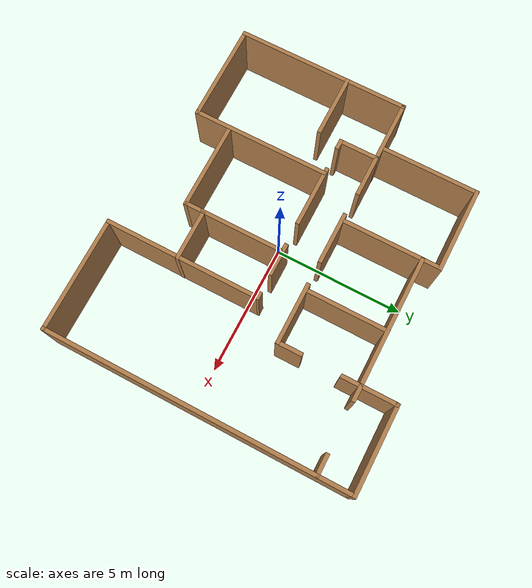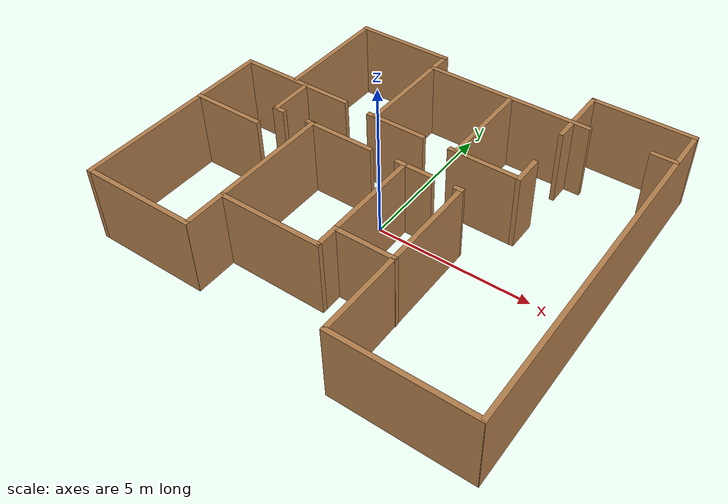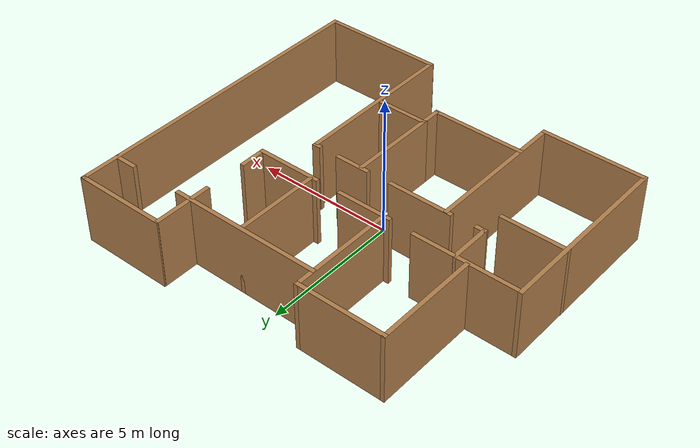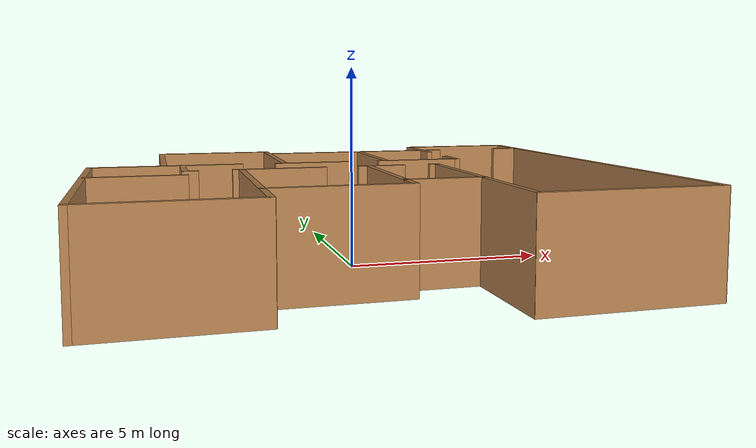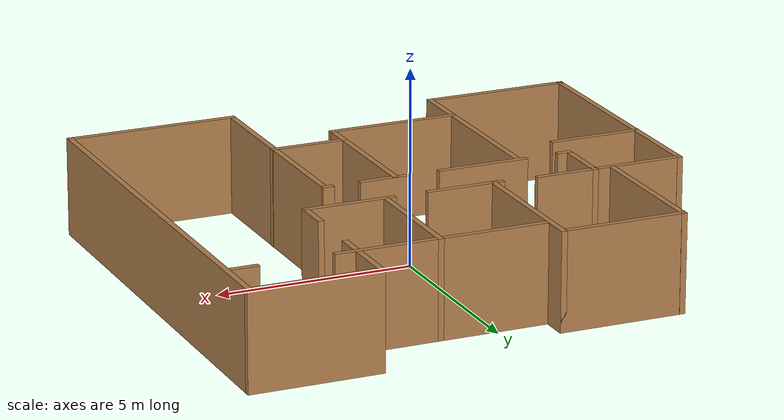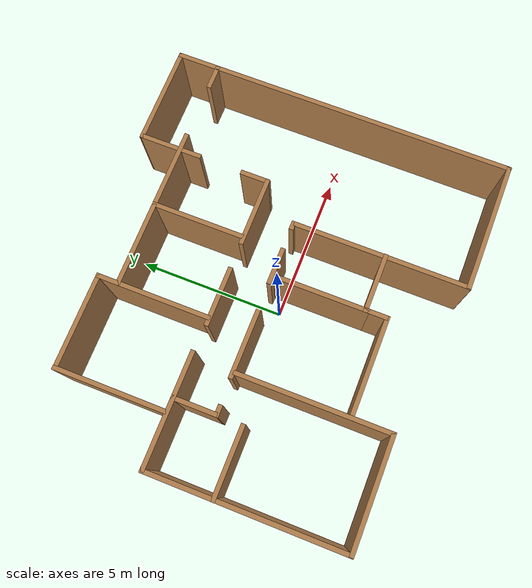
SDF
<?xml version='1.0'?>
<sdf version='1.6'>
  <model name='4room_1'>
    <pose frame=''>0.180514 0.359452 0 0 -0 0</pose>
    <link name='Wall_101'>
      <collision name='Wall_101_Collision'>
        <geometry>
          <box>
            <size>2.4 0.15 2.5</size>
          </box>
        </geometry>
        <pose frame=''>0 0 1.25 0 -0 0</pose>
      </collision>
      <visual name='Wall_101_Visual'>
        <pose frame=''>0 0 1.25 0 -0 0</pose>
        <geometry>
          <box>
            <size>2.4 0.15 2.5</size>
          </box>
        </geometry>
        <material>
          <script>
            <uri>file://media/materials/scripts/gazebo.material</uri>
            <name>Gazebo/Wood</name>
          </script>
          <ambient>1 1 1 1</ambient>
        </material>
        <meta>
          <layer>0</layer>
        </meta>
      </visual>
      <pose frame=''>-5.3703 -0.821222 0 0 -0 0</pose>
    </link>
    <link name='Wall_105'>
      <collision name='Wall_105_Collision'>
        <geometry>
          <box>
            <size>0.3 0.15 2.5</size>
          </box>
        </geometry>
        <pose frame=''>0 0 1.25 0 -0 0</pose>
      </collision>
      <visual name='Wall_105_Visual'>
        <pose frame=''>0 0 1.25 0 -0 0</pose>
        <geometry>
          <box>
            <size>0.3 0.15 2.5</size>
          </box>
        </geometry>
        <material>
          <script>
            <uri>file://media/materials/scripts/gazebo.material</uri>
            <name>Gazebo/Wood</name>
          </script>
          <ambient>1 1 1 1</ambient>
        </material>
        <meta>
          <layer>0</layer>
        </meta>
      </visual>
      <pose frame=''>2.15179 0.063742 0 0 -0 0</pose>
    </link>
    <link name='Wall_107'>
      <collision name='Wall_107_Collision'>
        <geometry>
          <box>
            <size>3.75 0.15 2.5</size>
          </box>
        </geometry>
        <pose frame=''>0 0 1.25 0 -0 0</pose>
      </collision>
      <visual name='Wall_107_Visual'>
        <pose frame=''>0 0 1.25 0 -0 0</pose>
        <geometry>
          <box>
            <size>3.75 0.15 2.5</size>
          </box>
        </geometry>
        <material>
          <script>
            <uri>file://media/materials/scripts/gazebo.material</uri>
            <name>Gazebo/Wood</name>
          </script>
          <ambient>1 1 1 1</ambient>
        </material>
        <meta>
          <layer>0</layer>
        </meta>
      </visual>
      <pose frame=''>-4.68068 3.32031 0 0 -0 -1.5708</pose>
    </link>
    <link name='Wall_109'>
      <collision name='Wall_109_Collision'>
        <geometry>
          <box>
            <size>3.25 0.15 2.5</size>
          </box>
        </geometry>
        <pose frame=''>0 0 1.25 0 -0 0</pose>
      </collision>
      <visual name='Wall_109_Visual'>
        <pose frame=''>0 0 1.25 0 -0 0</pose>
        <geometry>
          <box>
            <size>3.25 0.15 2.5</size>
          </box>
        </geometry>
        <material>
          <script>
            <uri>file://media/materials/scripts/gazebo.material</uri>
            <name>Gazebo/Wood</name>
          </script>
          <ambient>1 1 1 1</ambient>
        </material>
        <meta>
          <layer>0</layer>
        </meta>
      </visual>
      <pose frame=''>-3.1281 5.11524 0 0 -0 3.14159</pose>
    </link>
    <link name='Wall_111'>
      <collision name='Wall_111_Collision'>
        <geometry>
          <box>
            <size>3.85 0.15 2.5</size>
          </box>
        </geometry>
        <pose frame=''>0 0 1.25 0 -0 0</pose>
      </collision>
      <visual name='Wall_111_Visual'>
        <pose frame=''>0 0 1.25 0 -0 0</pose>
        <geometry>
          <box>
            <size>3.85 0.15 2.5</size>
          </box>
        </geometry>
        <material>
          <script>
            <uri>file://media/materials/scripts/gazebo.material</uri>
            <name>Gazebo/Wood</name>
          </script>
          <ambient>1 1 1 1</ambient>
        </material>
        <meta>
          <layer>0</layer>
        </meta>
      </visual>
      <pose frame=''>-1.5781 3.26524 0 0 -0 -1.5708</pose>
    </link>
    <link name='Wall_113'>
      <collision name='Wall_113_Collision'>
        <geometry>
          <box>
            <size>2 0.15 2.5</size>
          </box>
        </geometry>
        <pose frame=''>0 0 1.25 0 -0 0</pose>
      </collision>
      <visual name='Wall_113_Visual'>
        <pose frame=''>0 0 1.25 0 -0 0</pose>
        <geometry>
          <box>
            <size>2 0.15 2.5</size>
          </box>
        </geometry>
        <material>
          <script>
            <uri>file://media/materials/scripts/gazebo.material</uri>
            <name>Gazebo/Wood</name>
          </script>
          <ambient>1 1 1 1</ambient>
        </material>
        <meta>
          <layer>0</layer>
        </meta>
      </visual>
      <pose frame=''>-0.840672 1.36881 0 0 -0 0</pose>
    </link>
    <link name='Wall_115'>
      <collision name='Wall_115_Collision'>
        <geometry>
          <box>
            <size>5.5 0.15 2.5</size>
          </box>
        </geometry>
        <pose frame=''>0 0 1.25 0 -0 0</pose>
      </collision>
      <visual name='Wall_115_Visual'>
        <pose frame=''>0 0 1.25 0 -0 0</pose>
        <geometry>
          <box>
            <size>5.5 0.15 2.5</size>
          </box>
        </geometry>
        <material>
          <script>
            <uri>file://media/materials/scripts/gazebo.material</uri>
            <name>Gazebo/Wood</name>
          </script>
          <ambient>1 1 1 1</ambient>
        </material>
        <meta>
          <layer>0</layer>
        </meta>
      </visual>
      <pose frame=''>1.12225 4.44605 0 0 -0 0</pose>
    </link>
    <link name='Wall_117'>
      <collision name='Wall_117_Collision'>
        <geometry>
          <box>
            <size>3.15 0.15 2.5</size>
          </box>
        </geometry>
        <pose frame=''>0 0 1.25 0 -0 0</pose>
      </collision>
      <visual name='Wall_117_Visual'>
        <pose frame=''>0 0 1.25 0 -0 0</pose>
        <geometry>
          <box>
            <size>3.15 0.15 2.5</size>
          </box>
        </geometry>
        <material>
          <script>
            <uri>file://media/materials/scripts/gazebo.material</uri>
            <name>Gazebo/Wood</name>
          </script>
          <ambient>1 1 1 1</ambient>
        </material>
        <meta>
          <layer>0</layer>
        </meta>
      </visual>
      <pose frame=''>1.23045 2.94605 0 0 -0 -1.5708</pose>
    </link>
    <link name='Wall_120'>
      <collision name='Wall_120_Collision'>
        <geometry>
          <box>
            <size>2.35 0.15 2.5</size>
          </box>
        </geometry>
        <pose frame=''>0 0 1.25 0 -0 0</pose>
      </collision>
      <visual name='Wall_120_Visual'>
        <pose frame=''>0 0 1.25 0 -0 0</pose>
        <geometry>
          <box>
            <size>2.35 0.15 2.5</size>
          </box>
        </geometry>
        <material>
          <script>
            <uri>file://media/materials/scripts/gazebo.material</uri>
            <name>Gazebo/Wood</name>
          </script>
          <ambient>1 1 1 1</ambient>
        </material>
        <meta>
          <layer>0</layer>
        </meta>
      </visual>
      <pose frame=''>2.15809 1.36881 0 0 -0 0</pose>
    </link>
    <link name='Wall_125'>
      <collision name='Wall_125_Collision'>
        <geometry>
          <box>
            <size>2.1 0.15 2.5</size>
          </box>
        </geometry>
        <pose frame=''>0 0 1.25 0 -0 0</pose>
      </collision>
      <visual name='Wall_125_Visual'>
        <pose frame=''>0 0 1.25 0 -0 0</pose>
        <geometry>
          <box>
            <size>2.1 0.15 2.5</size>
          </box>
        </geometry>
        <material>
          <script>
            <uri>file://media/materials/scripts/gazebo.material</uri>
            <name>Gazebo/Wood</name>
          </script>
          <ambient>1 1 1 1</ambient>
        </material>
        <meta>
          <layer>0</layer>
        </meta>
      </visual>
      <pose frame=''>3.28794 4.76141 0 0 -0 -1.5708</pose>
    </link>
    <link name='Wall_127'>
      <collision name='Wall_127_Collision'>
        <geometry>
          <box>
            <size>1 0.15 2.5</size>
          </box>
        </geometry>
        <pose frame=''>0 0 1.25 0 -0 0</pose>
      </collision>
      <visual name='Wall_127_Visual'>
        <pose frame=''>0 0 1.25 0 -0 0</pose>
        <geometry>
          <box>
            <size>1 0.15 2.5</size>
          </box>
        </geometry>
        <material>
          <script>
            <uri>file://media/materials/scripts/gazebo.material</uri>
            <name>Gazebo/Wood</name>
          </script>
          <ambient>1 1 1 1</ambient>
        </material>
        <meta>
          <layer>0</layer>
        </meta>
      </visual>
      <pose frame=''>3.26414 1.79322 0 0 -0 -1.5708</pose>
    </link>
    <link name='Wall_129'>
      <collision name='Wall_129_Collision'>
        <geometry>
          <box>
            <size>3.35 0.15 2.5</size>
          </box>
        </geometry>
        <pose frame=''>0 0 1.25 0 -0 0</pose>
      </collision>
      <visual name='Wall_129_Visual'>
        <pose frame=''>0 0 1.25 0 -0 0</pose>
        <geometry>
          <box>
            <size>3.35 0.15 2.5</size>
          </box>
        </geometry>
        <material>
          <script>
            <uri>file://media/materials/scripts/gazebo.material</uri>
            <name>Gazebo/Wood</name>
          </script>
          <ambient>1 1 1 1</ambient>
        </material>
        <meta>
          <layer>0</layer>
        </meta>
      </visual>
      <pose frame=''>4.8953 5.78383 0 0 -0 0</pose>
    </link>
    <link name='Wall_131'>
      <collision name='Wall_131_Collision'>
        <geometry>
          <box>
            <size>0.85 0.15 2.5</size>
          </box>
        </geometry>
        <pose frame=''>0 0 1.25 0 -0 0</pose>
      </collision>
      <visual name='Wall_131_Visual'>
        <pose frame=''>0 0 1.25 0 -0 0</pose>
        <geometry>
          <box>
            <size>0.85 0.15 2.5</size>
          </box>
        </geometry>
        <material>
          <script>
            <uri>file://media/materials/scripts/gazebo.material</uri>
            <name>Gazebo/Wood</name>
          </script>
          <ambient>1 1 1 1</ambient>
        </material>
        <meta>
          <layer>0</layer>
        </meta>
      </visual>
      <pose frame=''>6.13091 4.44787 0 0 -0 3.14159</pose>
    </link>
    <link name='Wall_63'>
      <collision name='Wall_63_Collision'>
        <geometry>
          <box>
            <size>11.7 0.15 2.5</size>
          </box>
        </geometry>
        <pose frame=''>0 0 1.25 0 -0 0</pose>
      </collision>
      <visual name='Wall_63_Visual'>
        <pose frame=''>0 0 1.25 0 -0 0</pose>
        <geometry>
          <box>
            <size>11.7 0.15 2.5</size>
          </box>
        </geometry>
        <material>
          <script>
            <uri>file://media/materials/scripts/gazebo.material</uri>
            <name>Gazebo/Wood</name>
          </script>
          <ambient>1 1 1 1</ambient>
        </material>
        <meta>
          <layer>0</layer>
        </meta>
      </visual>
      <pose frame=''>6.49475 -0.002087 0 0 -0 -1.5708</pose>
    </link>
    <link name='Wall_65'>
      <collision name='Wall_65_Collision'>
        <geometry>
          <box>
            <size>4.4 0.15 2.5</size>
          </box>
        </geometry>
        <pose frame=''>0 0 1.25 0 -0 0</pose>
      </collision>
      <visual name='Wall_65_Visual'>
        <pose frame=''>0 0 1.25 0 -0 0</pose>
        <geometry>
          <box>
            <size>4.4 0.15 2.5</size>
          </box>
        </geometry>
        <material>
          <script>
            <uri>file://media/materials/scripts/gazebo.material</uri>
            <name>Gazebo/Wood</name>
          </script>
          <ambient>1 1 1 1</ambient>
        </material>
        <meta>
          <layer>0</layer>
        </meta>
      </visual>
      <pose frame=''>4.35197 -5.78383 0 0 -0 0</pose>
    </link>
    <link name='Wall_71'>
      <collision name='Wall_71_Collision'>
        <geometry>
          <box>
            <size>5.9 0.15 2.5</size>
          </box>
        </geometry>
        <pose frame=''>0 0 1.25 0 -0 0</pose>
      </collision>
      <visual name='Wall_71_Visual'>
        <pose frame=''>0 0 1.25 0 -0 0</pose>
        <geometry>
          <box>
            <size>5.9 0.15 2.5</size>
          </box>
        </geometry>
        <material>
          <script>
            <uri>file://media/materials/scripts/gazebo.material</uri>
            <name>Gazebo/Wood</name>
          </script>
          <ambient>1 1 1 1</ambient>
        </material>
        <meta>
          <layer>0</layer>
        </meta>
      </visual>
      <pose frame=''>2.22697 -2.89931 0 0 -0 -1.5708</pose>
    </link>
    <link name='Wall_74'>
      <collision name='Wall_74_Collision'>
        <geometry>
          <box>
            <size>2 0.15 2.5</size>
          </box>
        </geometry>
        <pose frame=''>0 0 1.25 0 -0 0</pose>
      </collision>
      <visual name='Wall_74_Visual'>
        <pose frame=''>0 0 1.25 0 -0 0</pose>
        <geometry>
          <box>
            <size>2 0.15 2.5</size>
          </box>
        </geometry>
        <material>
          <script>
            <uri>file://media/materials/scripts/gazebo.material</uri>
            <name>Gazebo/Wood</name>
          </script>
          <ambient>1 1 1 1</ambient>
        </material>
        <meta>
          <layer>0</layer>
        </meta>
      </visual>
      <pose frame=''>1.31353 -3.03129 0 0 -0 3.14159</pose>
    </link>
    <link name='Wall_76'>
      <collision name='Wall_76_Collision'>
        <geometry>
          <box>
            <size>0.8 0.15 2.5</size>
          </box>
        </geometry>
        <pose frame=''>0 0 1.25 0 -0 0</pose>
      </collision>
      <visual name='Wall_76_Visual'>
        <pose frame=''>0 0 1.25 0 -0 0</pose>
        <geometry>
          <box>
            <size>0.8 0.15 2.5</size>
          </box>
        </geometry>
        <material>
          <script>
            <uri>file://media/materials/scripts/gazebo.material</uri>
            <name>Gazebo/Wood</name>
          </script>
          <ambient>1 1 1 1</ambient>
        </material>
        <meta>
          <layer>0</layer>
        </meta>
      </visual>
      <pose frame=''>0.388084 -3.35629 0 0 -0 -1.5708</pose>
    </link>
    <link name='Wall_79'>
      <collision name='Wall_79_Collision'>
        <geometry>
          <box>
            <size>3.4 0.15 2.5</size>
          </box>
        </geometry>
        <pose frame=''>0 0 1.25 0 -0 0</pose>
      </collision>
      <visual name='Wall_79_Visual'>
        <pose frame=''>0 0 1.25 0 -0 0</pose>
        <geometry>
          <box>
            <size>3.4 0.15 2.5</size>
          </box>
        </geometry>
        <material>
          <script>
            <uri>file://media/materials/scripts/gazebo.material</uri>
            <name>Gazebo/Wood</name>
          </script>
          <ambient>1 1 1 1</ambient>
        </material>
        <meta>
          <layer>0</layer>
        </meta>
      </visual>
      <pose frame=''>-1.23677 -3.73677 0 0 -0 0</pose>
    </link>
    <link name='Wall_81'>
      <collision name='Wall_81_Collision'>
        <geometry>
          <box>
            <size>5.25 0.15 2.5</size>
          </box>
        </geometry>
        <pose frame=''>0 0 1.25 0 -0 0</pose>
      </collision>
      <visual name='Wall_81_Visual'>
        <pose frame=''>0 0 1.25 0 -0 0</pose>
        <geometry>
          <box>
            <size>5.25 0.15 2.5</size>
          </box>
        </geometry>
        <material>
          <script>
            <uri>file://media/materials/scripts/gazebo.material</uri>
            <name>Gazebo/Wood</name>
          </script>
          <ambient>1 1 1 1</ambient>
        </material>
        <meta>
          <layer>0</layer>
        </meta>
      </visual>
      <pose frame=''>-2.86177 -2.51648 0 0 -0 -1.5708</pose>
    </link>
    <link name='Wall_83'>
      <collision name='Wall_83_Collision'>
        <geometry>
          <box>
            <size>3.75 0.15 2.5</size>
          </box>
        </geometry>
        <pose frame=''>0 0 1.25 0 -0 0</pose>
      </collision>
      <visual name='Wall_83_Visual'>
        <pose frame=''>0 0 1.25 0 -0 0</pose>
        <geometry>
          <box>
            <size>3.75 0.15 2.5</size>
          </box>
        </geometry>
        <material>
          <script>
            <uri>file://media/materials/scripts/gazebo.material</uri>
            <name>Gazebo/Wood</name>
          </script>
          <ambient>1 1 1 1</ambient>
        </material>
        <meta>
          <layer>0</layer>
        </meta>
      </visual>
      <pose frame=''>-4.67014 -5.06678 0 0 -0 0</pose>
    </link>
    <link name='Wall_85'>
      <collision name='Wall_85_Collision'>
        <geometry>
          <box>
            <size>6.65 0.15 2.5</size>
          </box>
        </geometry>
        <pose frame=''>0 0 1.25 0 -0 0</pose>
      </collision>
      <visual name='Wall_85_Visual'>
        <pose frame=''>0 0 1.25 0 -0 0</pose>
        <geometry>
          <box>
            <size>6.65 0.15 2.5</size>
          </box>
        </geometry>
        <material>
          <script>
            <uri>file://media/materials/scripts/gazebo.material</uri>
            <name>Gazebo/Wood</name>
          </script>
          <ambient>1 1 1 1</ambient>
        </material>
        <meta>
          <layer>0</layer>
        </meta>
      </visual>
      <pose frame=''>-6.49327 -1.81708 0 0 -0 -1.5708</pose>
    </link>
    <link name='Wall_87'>
      <collision name='Wall_87_Collision'>
        <geometry>
          <box>
            <size>3.25 0.15 2.5</size>
          </box>
        </geometry>
        <pose frame=''>0 0 1.25 0 -0 0</pose>
      </collision>
      <visual name='Wall_87_Visual'>
        <pose frame=''>0 0 1.25 0 -0 0</pose>
        <geometry>
          <box>
            <size>3.25 0.15 2.5</size>
          </box>
        </geometry>
        <material>
          <script>
            <uri>file://media/materials/scripts/gazebo.material</uri>
            <name>Gazebo/Wood</name>
          </script>
          <ambient>1 1 1 1</ambient>
        </material>
        <meta>
          <layer>0</layer>
        </meta>
      </visual>
      <pose frame=''>0.38743 -1.52757 0 0 -0 -1.5708</pose>
    </link>
    <link name='Wall_90'>
      <collision name='Wall_90_Collision'>
        <geometry>
          <box>
            <size>2.35 0.15 2.5</size>
          </box>
        </geometry>
        <pose frame=''>0 0 1.25 0 -0 0</pose>
      </collision>
      <visual name='Wall_90_Visual'>
        <pose frame=''>0 0 1.25 0 -0 0</pose>
        <geometry>
          <box>
            <size>2.35 0.15 2.5</size>
          </box>
        </geometry>
        <material>
          <script>
            <uri>file://media/materials/scripts/gazebo.material</uri>
            <name>Gazebo/Wood</name>
          </script>
          <ambient>1 1 1 1</ambient>
        </material>
        <meta>
          <layer>0</layer>
        </meta>
      </visual>
      <pose frame=''>-1.90564 0.05741 0 0 -0 0</pose>
    </link>
    <link name='Wall_92'>
      <collision name='Wall_92_Collision'>
        <geometry>
          <box>
            <size>1.25 0.15 2.5</size>
          </box>
        </geometry>
        <pose frame=''>0 0 1.25 0 -0 0</pose>
      </collision>
      <visual name='Wall_92_Visual'>
        <pose frame=''>0 0 1.25 0 -0 0</pose>
        <geometry>
          <box>
            <size>1.25 0.15 2.5</size>
          </box>
        </geometry>
        <material>
          <script>
            <uri>file://media/materials/scripts/gazebo.material</uri>
            <name>Gazebo/Wood</name>
          </script>
          <ambient>1 1 1 1</ambient>
        </material>
        <meta>
          <layer>0</layer>
        </meta>
      </visual>
      <pose frame=''>0.710059 0.066155 0 0 -0 0</pose>
    </link>
    <link name='Wall_95'>
      <collision name='Wall_95_Collision'>
        <geometry>
          <box>
            <size>3.85 0.15 2.5</size>
          </box>
        </geometry>
        <pose frame=''>0 0 1.25 0 -0 0</pose>
      </collision>
      <visual name='Wall_95_Visual'>
        <pose frame=''>0 0 1.25 0 -0 0</pose>
        <geometry>
          <box>
            <size>3.85 0.15 2.5</size>
          </box>
        </geometry>
        <material>
          <script>
            <uri>file://media/materials/scripts/gazebo.material</uri>
            <name>Gazebo/Wood</name>
          </script>
          <ambient>1 1 1 1</ambient>
        </material>
        <meta>
          <layer>0</layer>
        </meta>
      </visual>
      <pose frame=''>-4.60118 1.43038 0 0 -0 0</pose>
    </link>
    <link name='Wall_97'>
      <collision name='Wall_97_Collision'>
        <geometry>
          <box>
            <size>1.5 0.15 2.5</size>
          </box>
        </geometry>
        <pose frame=''>0 0 1.25 0 -0 0</pose>
      </collision>
      <visual name='Wall_97_Visual'>
        <pose frame=''>0 0 1.25 0 -0 0</pose>
        <geometry>
          <box>
            <size>1.5 0.15 2.5</size>
          </box>
        </geometry>
        <material>
          <script>
            <uri>file://media/materials/scripts/gazebo.material</uri>
            <name>Gazebo/Wood</name>
          </script>
          <ambient>1 1 1 1</ambient>
        </material>
        <meta>
          <layer>0</layer>
        </meta>
      </visual>
      <pose frame=''>-4.2212 0.75538 0 0 -0 -1.5708</pose>
    </link>
    <link name='Wall_99'>
      <collision name='Wall_99_Collision'>
        <geometry>
          <box>
            <size>0.4 0.15 2.5</size>
          </box>
        </geometry>
        <pose frame=''>0 0 1.25 0 -0 0</pose>
      </collision>
      <visual name='Wall_99_Visual'>
        <pose frame=''>0 0 1.25 0 -0 0</pose>
        <geometry>
          <box>
            <size>0.4 0.15 2.5</size>
          </box>
        </geometry>
        <material>
          <script>
            <uri>file://media/materials/scripts/gazebo.material</uri>
            <name>Gazebo/Wood</name>
          </script>
          <ambient>1 1 1 1</ambient>
        </material>
        <meta>
          <layer>0</layer>
        </meta>
      </visual>
      <pose frame=''>-4.09619 0.023383 0 0 -0 3.14159</pose>
    </link>
    <static>1</static>
  </model>
</sdf>
